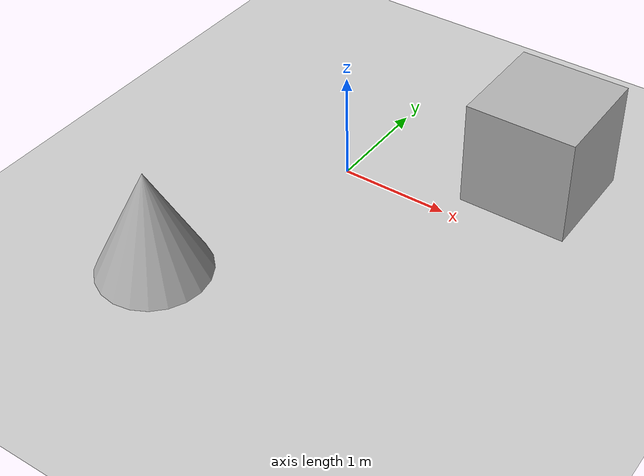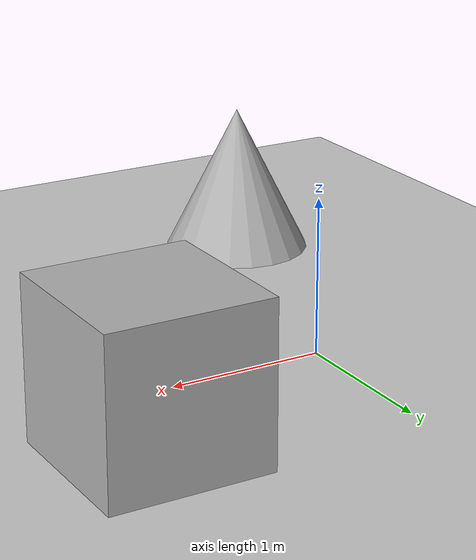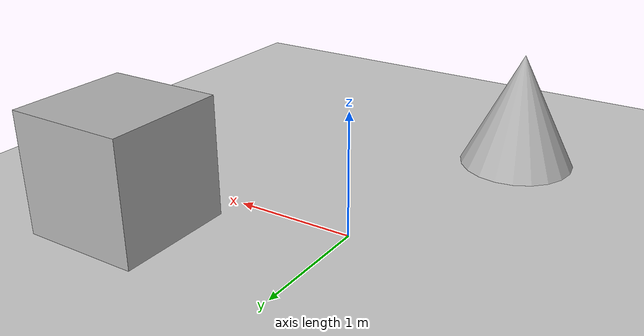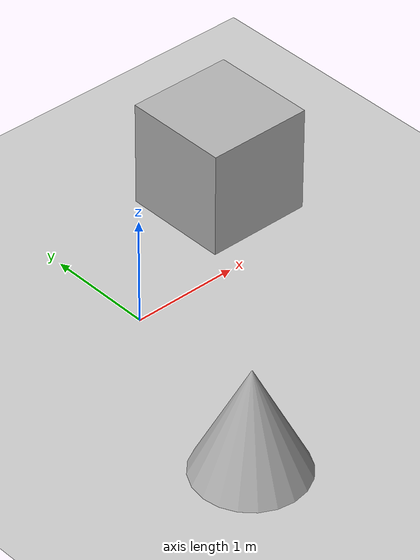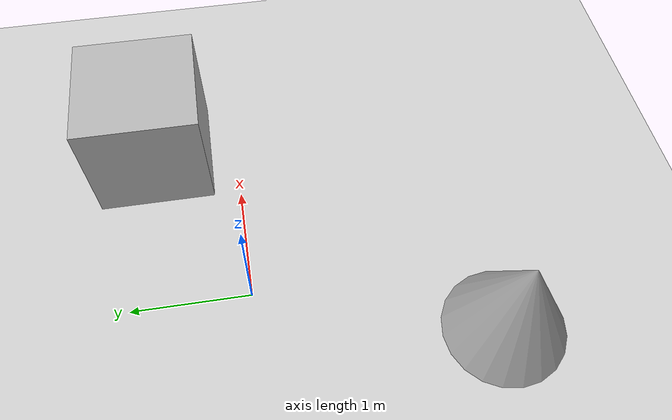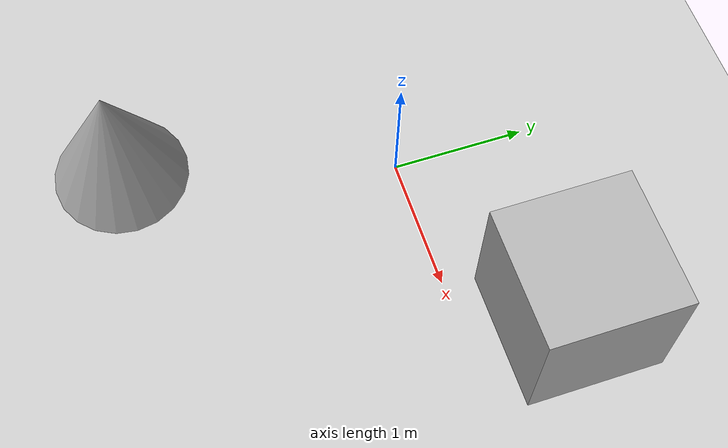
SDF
<sdf version='1.10'>
  <world name='my_world'>

    <physics name='1ms' type='ignored'>
      <max_step_size>0.001</max_step_size>
      <real_time_factor>1</real_time_factor>
      <real_time_update_rate>1000</real_time_update_rate>
    </physics>

    <plugin name='gz::sim::systems::Physics'
      filename='gz-sim-physics-system' />

    <plugin name='gz::sim::systems::Sensors'
      filename='gz-sim-sensors-system' />

    <plugin name='gz::sim::systems::UserCommands'
      filename='gz-sim-user-commands-system' />

    <plugin name='gz::sim::systems::SceneBroadcaster'
      filename='gz-sim-scene-broadcaster-system' />

    <plugin name='gz::sim::systems::Contact'
      filename='gz-sim-contact-system' />

    <plugin filename="gz-sim-joint-state-publisher-system"
      name="gz::sim::systems::JointStatePublisher">

    </plugin>

    <gravity>0 0 -9.8000000000000007</gravity>
    <magnetic_field>5.5644999999999998e-06 2.2875799999999999e-05 -4.2388400000000002e-05</magnetic_field>
    <atmosphere type='adiabatic' />

    <scene>
      <ambient>0.400000006 0.400000006 0.400000006 1</ambient>
      <background>0.699999988 0.699999988 0.699999988 1</background>
      <shadows>true</shadows>
    </scene>

    <model name='ground_plane'>
      <static>true</static>
      <link name='link'>
        <collision name='collision'>
          <geometry>
            <plane>
              <normal>0 0 1</normal>
              <size>100 100</size>
            </plane>
          </geometry>
          <surface>
            <friction>
              <ode />
            </friction>
            <bounce />
            <contact />
          </surface>
        </collision>
        <visual name='visual'>
          <geometry>
            <plane>
              <normal>0 0 1</normal>
              <size>100 100</size>
            </plane>
          </geometry>
          <material>
            <ambient>0.800000012 0.800000012 0.800000012 1</ambient>
            <diffuse>0.800000012 0.800000012 0.800000012 1</diffuse>
            <specular>0.800000012 0.800000012 0.800000012 1</specular>
          </material>
        </visual>
        <pose>0 0 0 0 0 0</pose>
        <inertial>
          <pose>0 0 0 0 0 0</pose>
          <mass>1</mass>
          <inertia>
            <ixx>1</ixx>
            <ixy>0</ixy>
            <ixz>0</ixz>
            <iyy>1</iyy>
            <iyz>0</iyz>
            <izz>1</izz>
          </inertia>
        </inertial>
        <enable_wind>false</enable_wind>
      </link>
      <pose>0 0 0 0 0 0</pose>
      <self_collide>false</self_collide>
    </model>
    <model name='box'>
      <pose>1.5400649151507197 0.73529571643865588 0.49999999980497606 -3.0498236377275717e-21
        -5.8943526570034993e-21 6.3991913974005532e-23</pose>
      <link name='box_link'>
        <inertial>
          <inertia>
            <ixx>0.16666</ixx>
            <ixy>0</ixy>
            <ixz>0</ixz>
            <iyy>0.16666</iyy>
            <iyz>0</iyz>
            <izz>0.16666</izz>
          </inertia>
          <mass>1</mass>
          <pose>0 0 0 0 0 0</pose>
        </inertial>
        <collision name='box_collision'>
          <geometry>
            <box>
              <size>1 1 1</size>
            </box>
          </geometry>
          <surface>
            <friction>
              <ode />
            </friction>
            <bounce />
            <contact />
          </surface>
        </collision>
        <visual name='box_visual'>
          <geometry>
            <box>
              <size>1 1 1</size>
            </box>
          </geometry>
          <material>
            <ambient>0.300000012 0.300000012 0.300000012 1</ambient>
            <diffuse>0.699999988 0.699999988 0.699999988 1</diffuse>
            <specular>1 1 1 1</specular>
          </material>
        </visual>
        <pose>0 0 0 0 0 0</pose>
        <enable_wind>false</enable_wind>
      </link>
      <static>false</static>
      <self_collide>false</self_collide>
    </model>
    <model name='cone'>
      <pose>-0.58012779770035783 -1.9573440255943502 0.49999999993296756 5.2542474327592625e-17
        -7.7132841039333329e-10 -1.7140678508643009e-22</pose>
      <link name='cone_link'>
        <inertial>
          <inertia>
            <ixx>0.074999999999999997</ixx>
            <ixy>0</ixy>
            <ixz>0</ixz>
            <iyy>0.074999999999999997</iyy>
            <iyz>0</iyz>
            <izz>0.074999999999999997</izz>
          </inertia>
          <mass>1</mass>
          <pose>0 0 0 0 0 0</pose>
        </inertial>
        <collision name='cone_collision'>
          <geometry>
            <cone>
              <radius>0.5</radius>
              <length>1</length>
            </cone>
          </geometry>
          <surface>
            <friction>
              <ode />
            </friction>
            <bounce />
            <contact />
          </surface>
        </collision>
        <visual name='cone_visual'>
          <geometry>
            <cone>
              <radius>0.5</radius>
              <length>1</length>
            </cone>
          </geometry>
          <material>
            <ambient>0.300000012 0.300000012 0.300000012 1</ambient>
            <diffuse>0.699999988 0.699999988 0.699999988 1</diffuse>
            <specular>1 1 1 1</specular>
          </material>
        </visual>
        <pose>0 0 0 0 0 0</pose>
        <enable_wind>false</enable_wind>
      </link>
      <static>false</static>
      <self_collide>false</self_collide>
    </model>
    <light name='sun' type='directional'>
      <pose>0 0 10 0 0 0</pose>
      <cast_shadows>true</cast_shadows>
      <intensity>1</intensity>
      <direction>-0.5 0.10000000000000001 -0.90000000000000002</direction>
      <diffuse>0.800000012 0.800000012 0.800000012 1</diffuse>
      <specular>0.200000003 0.200000003 0.200000003 1</specular>
      <attenuation>
        <range>1000</range>
        <linear>0.01</linear>
        <constant>0.90000000000000002</constant>
        <quadratic>0.001</quadratic>
      </attenuation>
      <spot>
        <inner_angle>0</inner_angle>
        <outer_angle>0</outer_angle>
        <falloff>0</falloff>
      </spot>
    </light>
  </world>
</sdf>
